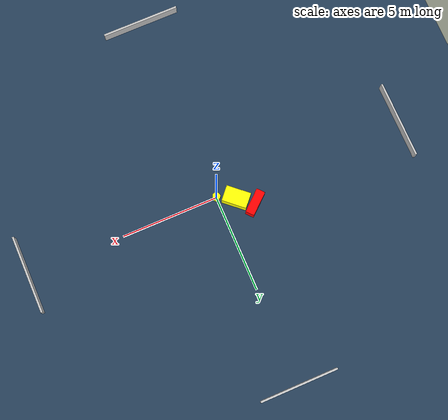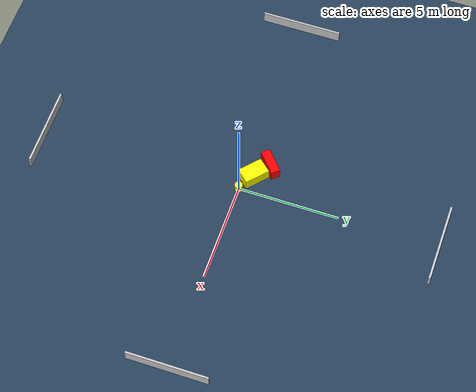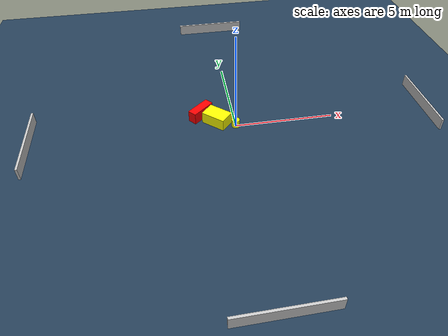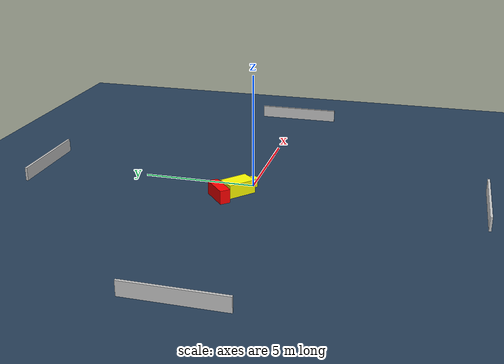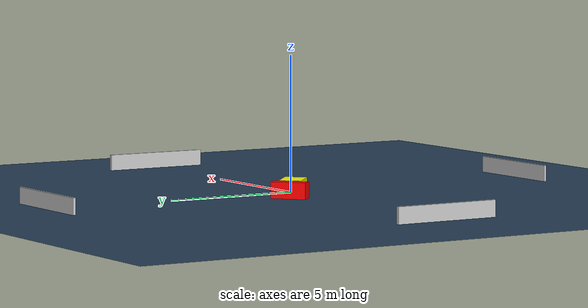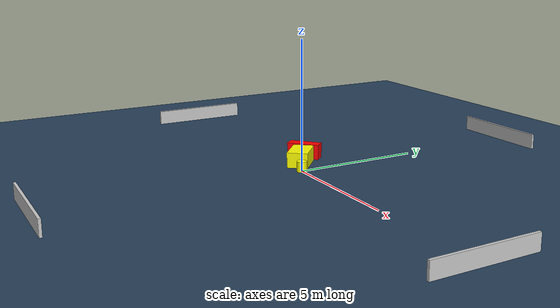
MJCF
<?xml version="1.0" ?>
<mujoco model="generated_environment">
  <option timestep="0.01" integrator="RK4" cone="elliptic"/>
  <default>
    <geom density="1"/>
  </default>
  <asset>
    <texture builtin="gradient" height="3072" name="skybox" rgb1="0.3 0.5 0.7" rgb2="0 0 0" type="skybox" width="512"/>
    <texture builtin="checker" height="300" name="groundplane" rgb1="0.2 0.3 0.4" rgb2="0.1 0.2 0.3" type="2d" width="300"/>
    <material name="groundplane" reflectance="0.2" texrepeat="5 5" texture="groundplane"/>
  </asset>
  <worldbody>
    <light dir="0 0 -1" directional="true" pos="0 0 1.5"/>
    <geom condim="3" friction="0.5 0.005 0.001" material="groundplane" name="floor" pos="0 0 0" size="0 0 0.05" type="plane"/>
    <body name="walls">
      <geom name="wall_1" condim="4" pos="-10.0 0.0 0.3" rgba="0.800000011920929 0.800000011920929 0.800000011920929 1.0" size="0.05 2.0 0.3" type="box"/>
      <geom name="wall_2" condim="4" pos="10.0 0.0 0.3" rgba="0.800000011920929 0.800000011920929 0.800000011920929 1.0" size="0.05 2.0 0.3" type="box"/>
      <geom name="wall_3" condim="4" pos="0.0 -10.0 0.3" rgba="0.800000011920929 0.800000011920929 0.800000011920929 1.0" size="2.0 0.05 0.3" type="box"/>
      <geom name="wall_4" condim="4" pos="0.0 10.0 0.3" rgba="0.800000011920929 0.800000011920929 0.800000011920929 1.0" size="2.0 0.05 0.3" type="box"/>
    </body>
    <body name="robot">
      <joint name="joint_x" type="slide" pos="0 0 0" axis="1 0 0"/>
      <joint name="joint_y" type="slide" pos="0 0 0" axis="0 1 0"/>
      <geom name="robot" type="cylinder" pos="0.0 0.0 0.2" size="0.2 0.2 0.0" mass="5.0" friction="1.0 0.005 0.0001" condim="4" rgba="1.0 1.0 0.0 1.0"/>
    </body>
    <body name="obstacle_1_movable">
      <geom name="obstacle_1_movable" condim="4" pos="-0.8800013095821037 0.4542755539169924 0.3" euler="0 0 138.3228778133046" friction="0.0 0.005 0.001" rgba="1.0 1.0 0.0 1.0" size="0.6347448115616316 0.4036946023503477 0.3" type="box" mass="0.1"/>
      <joint type="free"/>
    </body>
    <body name="obstacle_2_static">
      <geom name="obstacle_2_static" condim="4" pos="-1.6381004005425517 1.0634156711775196 0.3" euler="0 0 131.09475840494167" friction="0.0 0.005 0.001" rgba="1.0 0.0 0.0 1.0" size="0.22800621589752276 0.6454894352954255 0.3" type="box"/>
    </body>
  </worldbody>
  <actuator>
    <motor name="actuator_x" joint="joint_x" gear="1" ctrlrange="-1 1"/>
    <motor name="actuator_y" joint="joint_y" gear="1" ctrlrange="-1 1"/>
  </actuator>
</mujoco>
